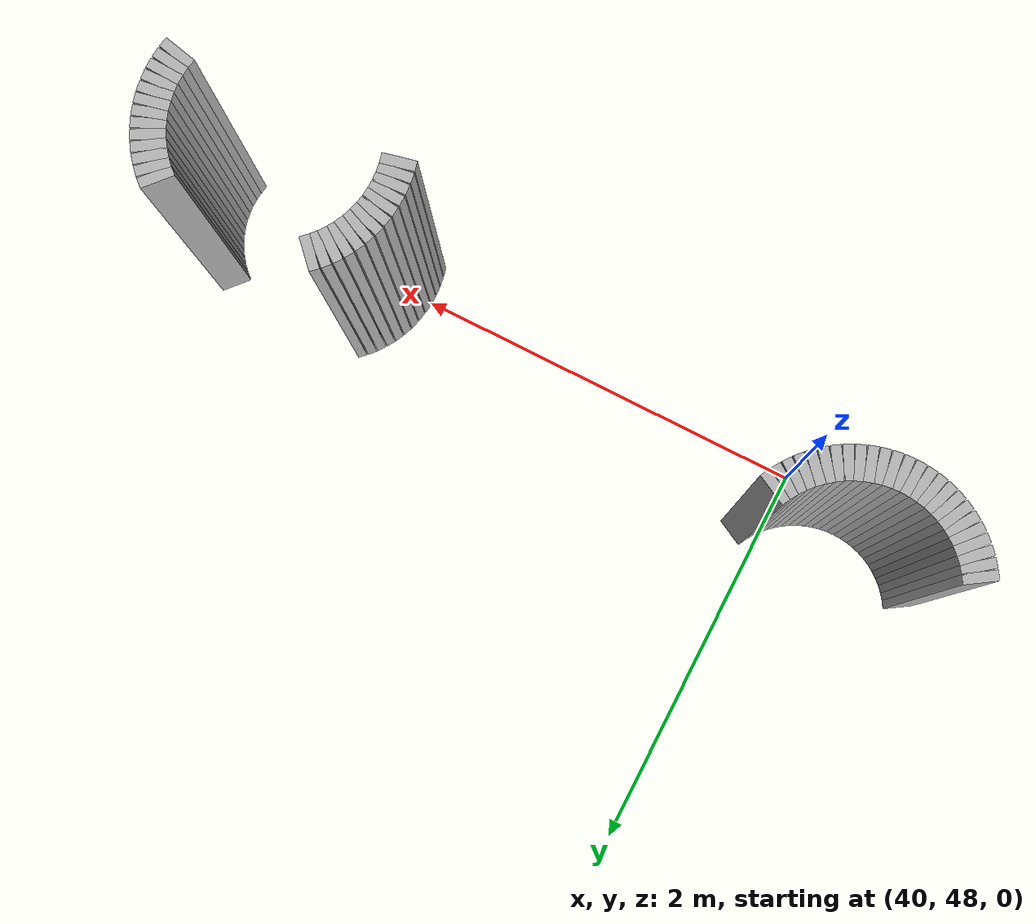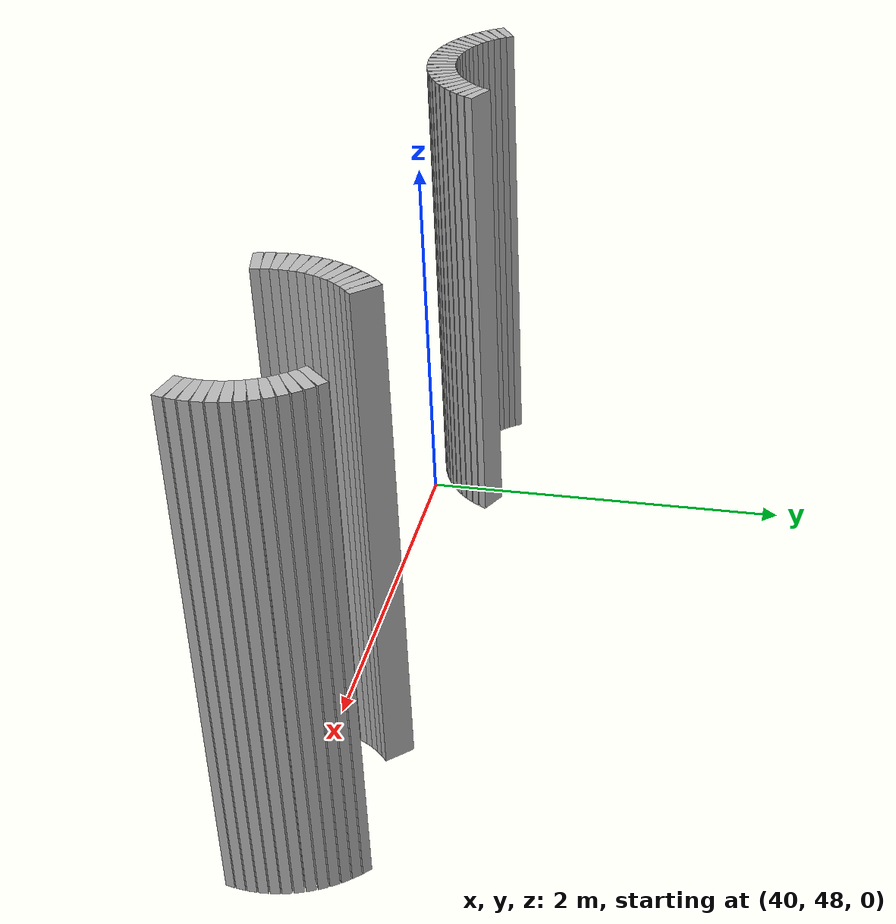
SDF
<sdf version="1.6">
 <model name="sps_2603">
  <static>1</static>
  <allow_auto_disable>0</allow_auto_disable>
  <link name="Wall697">
   <collision name="collision"><geometry><box><size>0.0452735 0.15 2.5</size></box></geometry></collision>
   <visual name="visual">
    <geometry><box><size>0.0452735 0.15 2.5</size></box></geometry>
    <transparency>0.0</transparency>
   </visual>
   <pose>42.9402 48.3382 1.25 0 0 -0.741533</pose>
  </link>
  <link name="Wall698">
   <collision name="collision"><geometry><box><size>0.0454087 0.15 2.5</size></box></geometry></collision>
   <visual name="visual">
    <geometry><box><size>0.0454087 0.15 2.5</size></box></geometry>
    <transparency>0.0</transparency>
   </visual>
   <pose>42.9722 48.3061 1.25 0 0 -0.831987</pose>
  </link>
  <link name="Wall699">
   <collision name="collision"><geometry><box><size>0.0453637 0.15 2.5</size></box></geometry></collision>
   <visual name="visual">
    <geometry><box><size>0.0453637 0.15 2.5</size></box></geometry>
    <transparency>0.0</transparency>
   </visual>
   <pose>43.0012 48.2713 1.25 0 0 -0.91707</pose>
  </link>
  <link name="Wall700">
   <collision name="collision"><geometry><box><size>0.045342 0.15 2.5</size></box></geometry></collision>
   <visual name="visual">
    <geometry><box><size>0.045342 0.15 2.5</size></box></geometry>
    <transparency>0.0</transparency>
   </visual>
   <pose>43.0272 48.2342 1.25 0 0 -1.00221</pose>
  </link>
  <link name="Wall701">
   <collision name="collision"><geometry><box><size>0.0453724 0.15 2.5</size></box></geometry></collision>
   <visual name="visual">
    <geometry><box><size>0.0453724 0.15 2.5</size></box></geometry>
    <transparency>0.0</transparency>
   </visual>
   <pose>43.0499 48.195 1.25 0 0 -1.0897</pose>
  </link>
  <link name="Wall702">
   <collision name="collision"><geometry><box><size>0.0453827 0.15 2.5</size></box></geometry></collision>
   <visual name="visual">
    <geometry><box><size>0.0453827 0.15 2.5</size></box></geometry>
    <transparency>0.0</transparency>
   </visual>
   <pose>43.0691 48.1539 1.25 0 0 -1.1818</pose>
  </link>
  <link name="Wall703">
   <collision name="collision"><geometry><box><size>0.0453611 0.15 2.5</size></box></geometry></collision>
   <visual name="visual">
    <geometry><box><size>0.0453611 0.15 2.5</size></box></geometry>
    <transparency>0.0</transparency>
   </visual>
   <pose>43.0846 48.1113 1.25 0 0 -1.26181</pose>
  </link>
  <link name="Wall704">
   <collision name="collision"><geometry><box><size>0.0452165 0.15 2.5</size></box></geometry></collision>
   <visual name="visual">
    <geometry><box><size>0.0452165 0.15 2.5</size></box></geometry>
    <transparency>0.0</transparency>
   </visual>
   <pose>43.0962 48.0676 1.25 0 0 -1.35725</pose>
  </link>
  <link name="Wall705">
   <collision name="collision"><geometry><box><size>0.0453869 0.15 2.5</size></box></geometry></collision>
   <visual name="visual">
    <geometry><box><size>0.0453869 0.15 2.5</size></box></geometry>
    <transparency>0.0</transparency>
   </visual>
   <pose>43.1041 48.023 1.25 0 0 -1.43727</pose>
  </link>
  <link name="Wall706">
   <collision name="collision"><geometry><box><size>0.0454521 0.15 2.5</size></box></geometry></collision>
   <visual name="visual">
    <geometry><box><size>0.0454521 0.15 2.5</size></box></geometry>
    <transparency>0.0</transparency>
   </visual>
   <pose>43.1081 47.9778 1.25 0 0 -1.52781</pose>
  </link>
  <link name="Wall707">
   <collision name="collision"><geometry><box><size>0.0452692 0.15 2.5</size></box></geometry></collision>
   <visual name="visual">
    <geometry><box><size>0.0452692 0.15 2.5</size></box></geometry>
    <transparency>0.0</transparency>
   </visual>
   <pose>43.1081 47.9325 1.25 0 0 -1.61395</pose>
  </link>
  <link name="Wall708">
   <collision name="collision"><geometry><box><size>0.0453869 0.15 2.5</size></box></geometry></collision>
   <visual name="visual">
    <geometry><box><size>0.0453869 0.15 2.5</size></box></geometry>
    <transparency>0.0</transparency>
   </visual>
   <pose>43.1041 47.8874 1.25 0 0 -1.70433</pose>
  </link>
  <link name="Wall709">
   <collision name="collision"><geometry><box><size>0.0454345 0.15 2.5</size></box></geometry></collision>
   <visual name="visual">
    <geometry><box><size>0.0454345 0.15 2.5</size></box></geometry>
    <transparency>0.0</transparency>
   </visual>
   <pose>43.0962 47.8427 1.25 0 0 -1.78743</pose>
  </link>
  <link name="Wall740">
   <collision name="collision"><geometry><box><size>0.0452557 0.15 2.5</size></box></geometry></collision>
   <visual name="visual">
    <geometry><box><size>0.0452557 0.15 2.5</size></box></geometry>
    <transparency>0.0</transparency>
   </visual>
   <pose>42.0817 47.843 1.25 0 -0 1.78829</pose>
  </link>
  <link name="Wall741">
   <collision name="collision"><geometry><box><size>0.0454156 0.15 2.5</size></box></geometry></collision>
   <visual name="visual">
    <geometry><box><size>0.0454156 0.15 2.5</size></box></geometry>
    <transparency>0.0</transparency>
   </visual>
   <pose>42.074 47.8876 1.25 0 -0 1.69882</pose>
  </link>
  <link name="Wall742">
   <collision name="collision"><geometry><box><size>0.0452109 0.15 2.5</size></box></geometry></collision>
   <visual name="visual">
    <geometry><box><size>0.0452109 0.15 2.5</size></box></geometry>
    <transparency>0.0</transparency>
   </visual>
   <pose>42.0701 47.9327 1.25 0 -0 1.61536</pose>
  </link>
  <link name="Wall743">
   <collision name="collision"><geometry><box><size>0.0454548 0.15 2.5</size></box></geometry></collision>
   <visual name="visual">
    <geometry><box><size>0.0454548 0.15 2.5</size></box></geometry>
    <transparency>0.0</transparency>
   </visual>
   <pose>42.0701 47.978 1.25 0 -0 1.52647</pose>
  </link>
  <link name="Wall744">
   <collision name="collision"><geometry><box><size>0.0453788 0.15 2.5</size></box></geometry></collision>
   <visual name="visual">
    <geometry><box><size>0.0453788 0.15 2.5</size></box></geometry>
    <transparency>0.0</transparency>
   </visual>
   <pose>42.0741 48.0232 1.25 0 -0 1.4386</pose>
  </link>
  <link name="Wall745">
   <collision name="collision"><geometry><box><size>0.0453285 0.15 2.5</size></box></geometry></collision>
   <visual name="visual">
    <geometry><box><size>0.0453285 0.15 2.5</size></box></geometry>
    <transparency>0.0</transparency>
   </visual>
   <pose>42.082 48.0678 1.25 0 -0 1.35227</pose>
  </link>
  <link name="Wall746">
   <collision name="collision"><geometry><box><size>0.0454804 0.15 2.5</size></box></geometry></collision>
   <visual name="visual">
    <geometry><box><size>0.0454804 0.15 2.5</size></box></geometry>
    <transparency>0.0</transparency>
   </visual>
   <pose>42.0937 48.1116 1.25 0 -0 1.26687</pose>
  </link>
  <link name="Wall747">
   <collision name="collision"><geometry><box><size>0.0452271 0.15 2.5</size></box></geometry></collision>
   <visual name="visual">
    <geometry><box><size>0.0452271 0.15 2.5</size></box></geometry>
    <transparency>0.0</transparency>
   </visual>
   <pose>42.1092 48.1542 1.25 0 -0 1.17601</pose>
  </link>
  <link name="Wall748">
   <collision name="collision"><geometry><box><size>0.0454228 0.15 2.5</size></box></geometry></collision>
   <visual name="visual">
    <geometry><box><size>0.0454228 0.15 2.5</size></box></geometry>
    <transparency>0.0</transparency>
   </visual>
   <pose>42.1283 48.1953 1.25 0 -0 1.09633</pose>
  </link>
  <link name="Wall749">
   <collision name="collision"><geometry><box><size>0.0454409 0.15 2.5</size></box></geometry></collision>
   <visual name="visual">
    <geometry><box><size>0.0454409 0.15 2.5</size></box></geometry>
    <transparency>0.0</transparency>
   </visual>
   <pose>42.1509 48.2346 1.25 0 -0 0.998813</pose>
  </link>
  <link name="Wall750">
   <collision name="collision"><geometry><box><size>0.0454008 0.15 2.5</size></box></geometry></collision>
   <visual name="visual">
    <geometry><box><size>0.0454008 0.15 2.5</size></box></geometry>
    <transparency>0.0</transparency>
   </visual>
   <pose>42.1771 48.2717 1.25 0 -0 0.916002</pose>
  </link>
  <link name="Wall751">
   <collision name="collision"><geometry><box><size>0.0452735 0.15 2.5</size></box></geometry></collision>
   <visual name="visual">
    <geometry><box><size>0.0452735 0.15 2.5</size></box></geometry>
    <transparency>0.0</transparency>
   </visual>
   <pose>42.2062 48.3064 1.25 0 -0 0.829263</pose>
  </link>
  <link name="Wall752">
   <collision name="collision"><geometry><box><size>0.0453148 0.15 2.5</size></box></geometry></collision>
   <visual name="visual">
    <geometry><box><size>0.0453148 0.15 2.5</size></box></geometry>
    <transparency>0.0</transparency>
   </visual>
   <pose>42.2382 48.3384 1.25 0 -0 0.742526</pose>
  </link>
  <link name="Wall1020">
   <collision name="collision"><geometry><box><size>0.0453724 0.15 2.5</size></box></geometry></collision>
   <visual name="visual">
    <geometry><box><size>0.0453724 0.15 2.5</size></box></geometry>
    <transparency>0.0</transparency>
   </visual>
   <pose>40.1184 48.3532 1.25 0 0 -2.05189</pose>
  </link>
  <link name="Wall1021">
   <collision name="collision"><geometry><box><size>0.0454964 0.15 2.5</size></box></geometry></collision>
   <visual name="visual">
    <geometry><box><size>0.0454964 0.15 2.5</size></box></geometry>
    <transparency>0.0</transparency>
   </visual>
   <pose>40.0957 48.3139 1.25 0 0 -2.13722</pose>
  </link>
  <link name="Wall1022">
   <collision name="collision"><geometry><box><size>0.0453637 0.15 2.5</size></box></geometry></collision>
   <visual name="visual">
    <geometry><box><size>0.0453637 0.15 2.5</size></box></geometry>
    <transparency>0.0</transparency>
   </visual>
   <pose>40.0697 48.2767 1.25 0 0 -2.22452</pose>
  </link>
  <link name="Wall1023">
   <collision name="collision"><geometry><box><size>0.0453148 0.15 2.5</size></box></geometry></collision>
   <visual name="visual">
    <geometry><box><size>0.0453148 0.15 2.5</size></box></geometry>
    <transparency>0.0</transparency>
   </visual>
   <pose>40.0405 48.242 1.25 0 0 -2.31332</pose>
  </link>
  <link name="Wall1024">
   <collision name="collision"><geometry><box><size>0.0452735 0.15 2.5</size></box></geometry></collision>
   <visual name="visual">
    <geometry><box><size>0.0452735 0.15 2.5</size></box></geometry>
    <transparency>0.0</transparency>
   </visual>
   <pose>40.0085 48.21 1.25 0 0 -2.40006</pose>
  </link>
  <link name="Wall1025">
   <collision name="collision"><geometry><box><size>0.0454008 0.15 2.5</size></box></geometry></collision>
   <visual name="visual">
    <geometry><box><size>0.0454008 0.15 2.5</size></box></geometry>
    <transparency>0.0</transparency>
   </visual>
   <pose>39.9738 48.1809 1.25 0 0 -2.4868</pose>
  </link>
  <link name="Wall1026">
   <collision name="collision"><geometry><box><size>0.0454637 0.15 2.5</size></box></geometry></collision>
   <visual name="visual">
    <geometry><box><size>0.0454637 0.15 2.5</size></box></geometry>
    <transparency>0.0</transparency>
   </visual>
   <pose>39.9366 48.1549 1.25 0 0 -2.5763</pose>
  </link>
  <link name="Wall1027">
   <collision name="collision"><geometry><box><size>0.0452338 0.15 2.5</size></box></geometry></collision>
   <visual name="visual">
    <geometry><box><size>0.0452338 0.15 2.5</size></box></geometry>
    <transparency>0.0</transparency>
   </visual>
   <pose>39.8974 48.1323 1.25 0 0 -2.66346</pose>
  </link>
  <link name="Wall1028">
   <collision name="collision"><geometry><box><size>0.0455089 0.15 2.5</size></box></geometry></collision>
   <visual name="visual">
    <geometry><box><size>0.0455089 0.15 2.5</size></box></geometry>
    <transparency>0.0</transparency>
   </visual>
   <pose>39.8563 48.1132 1.25 0 0 -2.74938</pose>
  </link>
  <link name="Wall1029">
   <collision name="collision"><geometry><box><size>0.0452475 0.15 2.5</size></box></geometry></collision>
   <visual name="visual">
    <geometry><box><size>0.0452475 0.15 2.5</size></box></geometry>
    <transparency>0.0</transparency>
   </visual>
   <pose>39.8137 48.0977 1.25 0 0 -2.83605</pose>
  </link>
  <link name="Wall1030">
   <collision name="collision"><geometry><box><size>0.0452689 0.15 2.5</size></box></geometry></collision>
   <visual name="visual">
    <geometry><box><size>0.0452689 0.15 2.5</size></box></geometry>
    <transparency>0.0</transparency>
   </visual>
   <pose>39.77 48.086 1.25 0 0 -2.92278</pose>
  </link>
  <link name="Wall1031">
   <collision name="collision"><geometry><box><size>0.0454394 0.15 2.5</size></box></geometry></collision>
   <visual name="visual">
    <geometry><box><size>0.0454394 0.15 2.5</size></box></geometry>
    <transparency>0.0</transparency>
   </visual>
   <pose>39.7254 48.0781 1.25 0 0 -3.00957</pose>
  </link>
  <link name="Wall1032">
   <collision name="collision"><geometry><box><size>0.0454548 0.15 2.5</size></box></geometry></collision>
   <visual name="visual">
    <geometry><box><size>0.0454548 0.15 2.5</size></box></geometry>
    <transparency>0.0</transparency>
   </visual>
   <pose>39.6801 48.0741 1.25 0 0 -3.09727</pose>
  </link>
  <link name="Wall1033">
   <collision name="collision"><geometry><box><size>0.0452109 0.15 2.5</size></box></geometry></collision>
   <visual name="visual">
    <geometry><box><size>0.0452109 0.15 2.5</size></box></geometry>
    <transparency>0.0</transparency>
   </visual>
   <pose>39.6348 48.0741 1.25 0 -0 3.09703</pose>
  </link>
  <link name="Wall1034">
   <collision name="collision"><geometry><box><size>0.0453788 0.15 2.5</size></box></geometry></collision>
   <visual name="visual">
    <geometry><box><size>0.0453788 0.15 2.5</size></box></geometry>
    <transparency>0.0</transparency>
   </visual>
   <pose>39.5898 48.0781 1.25 0 -0 3.0094</pose>
  </link>
  <link name="Wall1035">
   <collision name="collision"><geometry><box><size>0.0455072 0.15 2.5</size></box></geometry></collision>
   <visual name="visual">
    <geometry><box><size>0.0455072 0.15 2.5</size></box></geometry>
    <transparency>0.0</transparency>
   </visual>
   <pose>39.5451 48.086 1.25 0 -0 2.92394</pose>
  </link>
  <link name="Wall1036">
   <collision name="collision"><geometry><box><size>0.0453057 0.15 2.5</size></box></geometry></collision>
   <visual name="visual">
    <geometry><box><size>0.0453057 0.15 2.5</size></box></geometry>
    <transparency>0.0</transparency>
   </visual>
   <pose>39.5012 48.0977 1.25 0 -0 2.83646</pose>
  </link>
  <link name="Wall1037">
   <collision name="collision"><geometry><box><size>0.0454525 0.15 2.5</size></box></geometry></collision>
   <visual name="visual">
    <geometry><box><size>0.0454525 0.15 2.5</size></box></geometry>
    <transparency>0.0</transparency>
   </visual>
   <pose>39.4586 48.1132 1.25 0 -0 2.74887</pose>
  </link>
  <link name="Wall1038">
   <collision name="collision"><geometry><box><size>0.0453183 0.15 2.5</size></box></geometry></collision>
   <visual name="visual">
    <geometry><box><size>0.0453183 0.15 2.5</size></box></geometry>
    <transparency>0.0</transparency>
   </visual>
   <pose>39.4176 48.1324 1.25 0 -0 2.65987</pose>
  </link>
  <link name="Wall1039">
   <collision name="collision"><geometry><box><size>0.045342 0.15 2.5</size></box></geometry></collision>
   <visual name="visual">
    <geometry><box><size>0.045342 0.15 2.5</size></box></geometry>
    <transparency>0.0</transparency>
   </visual>
   <pose>39.3784 48.1551 1.25 0 -0 2.57301</pose>
  </link>
  <link name="Wall1040">
   <collision name="collision"><geometry><box><size>0.0453637 0.15 2.5</size></box></geometry></collision>
   <visual name="visual">
    <geometry><box><size>0.0453637 0.15 2.5</size></box></geometry>
    <transparency>0.0</transparency>
   </visual>
   <pose>39.3413 48.1811 1.25 0 -0 2.48787</pose>
  </link>
  <link name="Wall1041">
   <collision name="collision"><geometry><box><size>0.0452735 0.15 2.5</size></box></geometry></collision>
   <visual name="visual">
    <geometry><box><size>0.0452735 0.15 2.5</size></box></geometry>
    <transparency>0.0</transparency>
   </visual>
   <pose>39.3066 48.2102 1.25 0 -0 2.40006</pose>
  </link>
  <link name="Wall1042">
   <collision name="collision"><geometry><box><size>0.0454949 0.15 2.5</size></box></geometry></collision>
   <visual name="visual">
    <geometry><box><size>0.0454949 0.15 2.5</size></box></geometry>
    <transparency>0.0</transparency>
   </visual>
   <pose>39.2746 48.2423 1.25 0 -0 2.30969</pose>
  </link>
  <link name="Wall1043">
   <collision name="collision"><geometry><box><size>0.0451701 0.15 2.5</size></box></geometry></collision>
   <visual name="visual">
    <geometry><box><size>0.0451701 0.15 2.5</size></box></geometry>
    <transparency>0.0</transparency>
   </visual>
   <pose>39.2454 48.277 1.25 0 -0 2.22781</pose>
  </link>
  <link name="Wall1044">
   <collision name="collision"><geometry><box><size>0.0454964 0.15 2.5</size></box></geometry></collision>
   <visual name="visual">
    <geometry><box><size>0.0454964 0.15 2.5</size></box></geometry>
    <transparency>0.0</transparency>
   </visual>
   <pose>39.2194 48.3141 1.25 0 -0 2.13722</pose>
  </link>
 </model>
</sdf>
